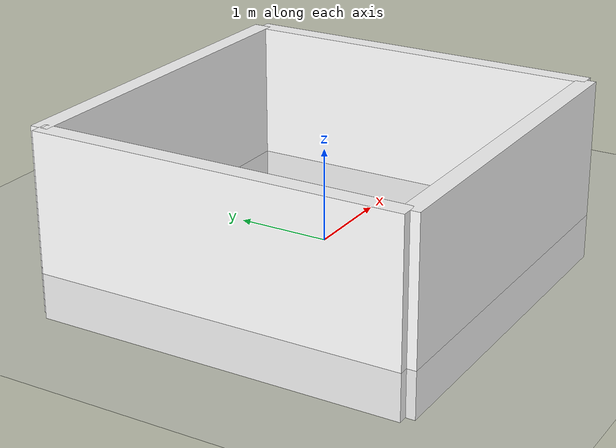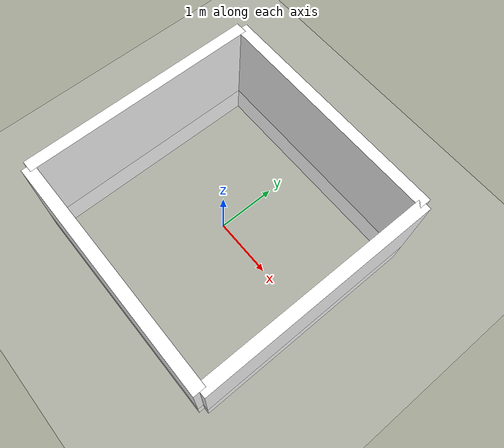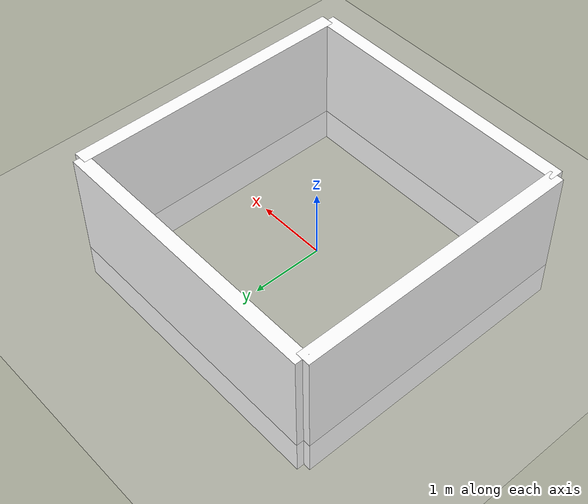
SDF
<sdf version="1.8">
 <world name="single_4x4">
  <plugin filename="gz-sim-physics-system" name="gz::sim::systems::Physics"/>
  <plugin filename="gz-sim-sensors-system" name="gz::sim::systems::Sensors">
   <render_engine>ogre2</render_engine>
  </plugin>
  <plugin filename="gz-sim-scene-broadcaster-system" name="gz::sim::systems::SceneBroadcaster"/>
  <plugin filename="gz-sim-user-commands-system" name="gz::sim::systems::UserCommands"/>
  <light name="sun" type="directional">
   <pose>0 0 10 0 0 0</pose>
   <diffuse>0.8 0.8 0.8 1</diffuse>
   <specular>0.2 0.2 0.2 1</specular>
   <attenuation>
    <range>1000</range>
    <constant>0.9</constant>
    <linear>0.01</linear>
    <quadratic>0.001</quadratic>
   </attenuation>
   <direction>-0.5 0.1 -0.9</direction>
  </light>
  <model name="ground_plane">
   <static>true</static>
   <link name="link">
    <collision name="collision">
     <geometry><plane><normal>0 0 1</normal><size>100 100</size></plane></geometry>
    </collision>
    <visual name="visual">
     <geometry><plane><normal>0 0 1</normal><size>100 100</size></plane></geometry>
     <material>
      <ambient>0.8 0.8 0.8 1</ambient>
      <diffuse>0.8 0.8 0.8 1</diffuse>
      <specular>0.8 0.8 0.8 1</specular>
     </material>
    </visual>
   </link>
  </model>
  <model name="wall1">
   <pose>2 0 0.5 0 0 0</pose>
   <static>true</static>
   <link name="link">
    <visual name="visual">
     <geometry><box><size>0.2 4 2</size></box></geometry>
     <material>
      <ambient>1 1 1 1</ambient>
      <diffuse>1 1 1 1</diffuse>
      <pbr>
       <metal>
        <albedo_map>file:///home/odyssey/final-project/crazyflie_mapping_demo/ros2_ws/src/cf-gz/ros_gz_crazyflie_gazebo/worlds/wall_texture.png</albedo_map>
       </metal>
      </pbr>
     </material>
    </visual>
   </link>
  </model>
  <model name="wall2">
   <pose>-2 0 0.5 0 0 0</pose>
   <static>true</static>
   <link name="link">
    <visual name="visual">
     <geometry><box><size>0.2 4 2</size></box></geometry>
     <material>
      <ambient>1 1 1 1</ambient>
      <diffuse>1 1 1 1</diffuse>
      <pbr>
       <metal>
        <albedo_map>file:///home/odyssey/final-project/crazyflie_mapping_demo/ros2_ws/src/cf-gz/ros_gz_crazyflie_gazebo/worlds/wall_texture.png</albedo_map>
       </metal>
      </pbr>
     </material>
    </visual>
   </link>
  </model>
  <model name="wall3">
   <pose>0 2 0.5 0 0 1.57</pose>
   <static>true</static>
   <link name="link">
    <visual name="visual">
     <geometry><box><size>0.2 4 2</size></box></geometry>
     <material>
      <ambient>1 1 1 1</ambient>
      <diffuse>1 1 1 1</diffuse>
      <pbr>
       <metal>
        <albedo_map>file:///home/odyssey/final-project/crazyflie_mapping_demo/ros2_ws/src/cf-gz/ros_gz_crazyflie_gazebo/worlds/wall_texture.png</albedo_map>
       </metal>
      </pbr>
     </material>
    </visual>
   </link>
  </model>
  <model name="wall4">
   <pose>0 -2 0.5 0 0 1.57</pose>
   <static>true</static>
   <link name="link">
    <visual name="visual">
     <geometry><box><size>0.2 4 2</size></box></geometry>
     <material>
      <ambient>1 1 1 1</ambient>
      <diffuse>1 1 1 1</diffuse>
      <pbr>
       <metal>
        <albedo_map>file:///home/odyssey/final-project/crazyflie_mapping_demo/ros2_ws/src/cf-gz/ros_gz_crazyflie_gazebo/worlds/wall_texture.png</albedo_map>
       </metal>
      </pbr>
     </material>
    </visual>
   </link>
  </model>
 </world>
</sdf>
